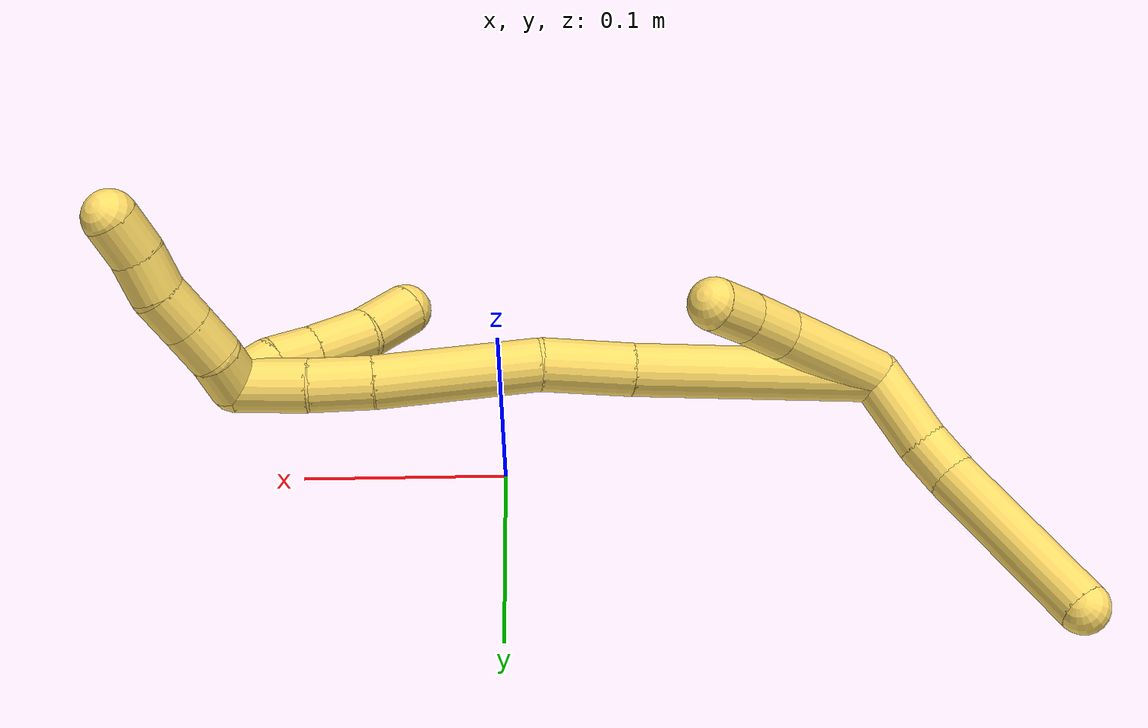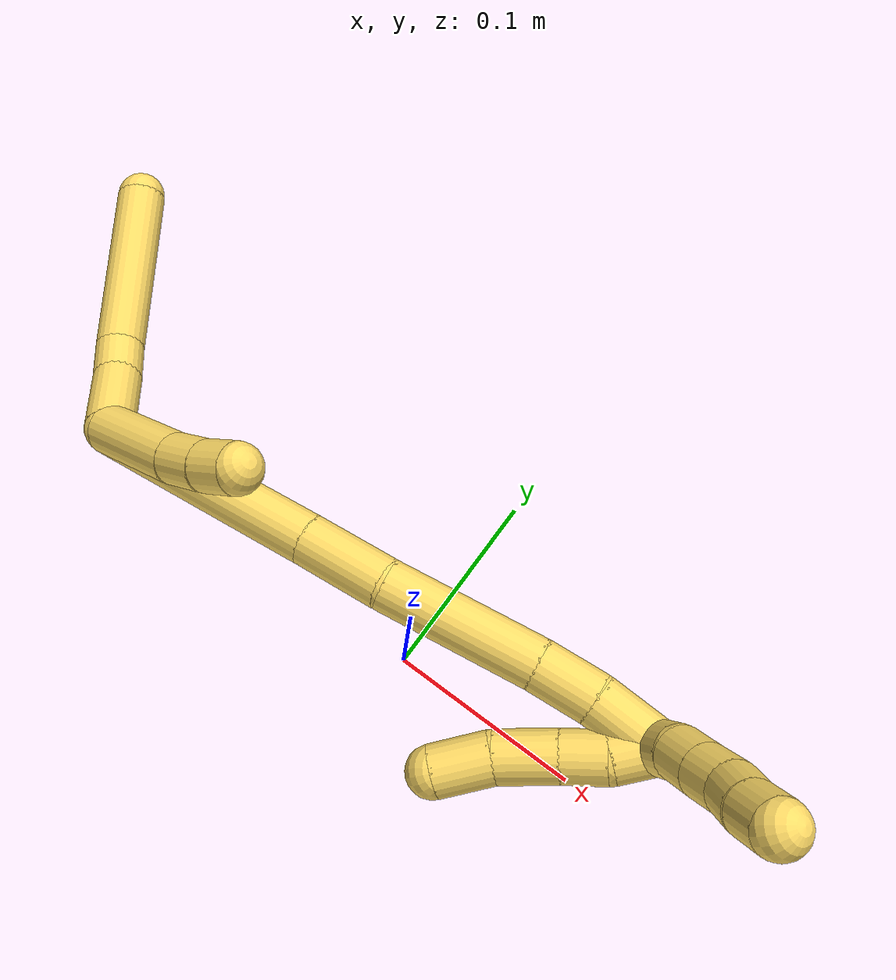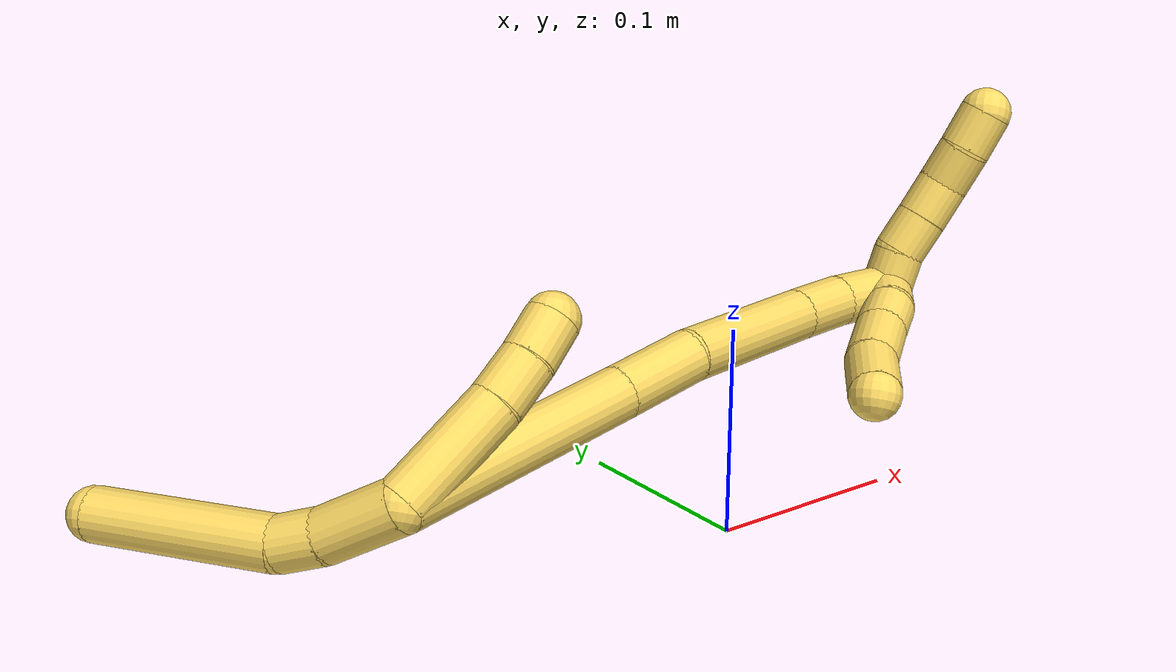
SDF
<sdf version="1.7">
 <world name="default">
  <model name="5">
   <static>0</static>
   <link name="5">
    <collision name="collision-cylinder-e_1_2_8">
     <pose>-0.007187 0.015936 -0.008052 -2.03866 -0.382665 0.610136</pose>
     <geometry><cylinder><radius>0.0125</radius><length>0.038495</length></cylinder></geometry>
     <surface>
      <friction><ode><mu>1.16</mu><mu2>1.16</mu2><slip1>0</slip1><slip2>0</slip2></ode></friction>
      <contact><ode><kp>1e+06</kp><kd>1</kd><max_vel>0</max_vel><min_depth>0.001</min_depth></ode></contact>
     </surface>
    </collision>
    <visual name="visual-cylinder-e_1_2_8">
     <pose>-0.007187 0.015936 -0.008052 -2.03866 -0.382665 0.610136</pose>
     <geometry><cylinder><radius>0.0125</radius><length>0.038495</length></cylinder></geometry>
     <material><ambient>1 0.858824 0.4 1</ambient></material>
    </visual>
    <collision name="collision-cylinder-e_2_8_9">
     <pose>-0.019651 0.040747 -0.019106 -1.89697 -0.51301 0.701006</pose>
     <geometry><cylinder><radius>0.0125</radius><length>0.021504</length></cylinder></geometry>
     <surface>
      <friction><ode><mu>1.16</mu><mu2>1.16</mu2><slip1>0</slip1><slip2>0</slip2></ode></friction>
      <contact><ode><kp>1e+06</kp><kd>1</kd><max_vel>0</max_vel><min_depth>0.001</min_depth></ode></contact>
     </surface>
    </collision>
    <visual name="visual-cylinder-e_2_8_9">
     <pose>-0.019651 0.040747 -0.019106 -1.89697 -0.51301 0.701006</pose>
     <geometry><cylinder><radius>0.0125</radius><length>0.021504</length></cylinder></geometry>
     <material><ambient>1 0.858824 0.4 1</ambient></material>
    </visual>
    <collision name="collision-cylinder-e_3_9_6">
     <pose>-0.050069 0.086937 -0.0214 -1.55183 -0.592793 0.58228</pose>
     <geometry><cylinder><radius>0.0125</radius><length>0.090001</length></cylinder></geometry>
     <surface>
      <friction><ode><mu>1.16</mu><mu2>1.16</mu2><slip1>0</slip1><slip2>0</slip2></ode></friction>
      <contact><ode><kp>1e+06</kp><kd>1</kd><max_vel>0</max_vel><min_depth>0.001</min_depth></ode></contact>
     </surface>
    </collision>
    <visual name="visual-cylinder-e_3_9_6">
     <pose>-0.050069 0.086937 -0.0214 -1.55183 -0.592793 0.58228</pose>
     <geometry><cylinder><radius>0.0125</radius><length>0.090001</length></cylinder></geometry>
     <material><ambient>1 0.858824 0.4 1</ambient></material>
    </visual>
    <collision name="collision-cylinder-e_1_2_10">
     <pose>0.014518 -0.005375 0.023309 0.226638 0.545509 0.063648</pose>
     <geometry><cylinder><radius>0.0125</radius><length>0.055963</length></cylinder></geometry>
     <surface>
      <friction><ode><mu>1.16</mu><mu2>1.16</mu2><slip1>0</slip1><slip2>0</slip2></ode></friction>
      <contact><ode><kp>1e+06</kp><kd>1</kd><max_vel>0</max_vel><min_depth>0.001</min_depth></ode></contact>
     </surface>
    </collision>
    <visual name="visual-cylinder-e_1_2_10">
     <pose>0.014518 -0.005375 0.023309 0.226638 0.545509 0.063648</pose>
     <geometry><cylinder><radius>0.0125</radius><length>0.055963</length></cylinder></geometry>
     <material><ambient>1 0.858824 0.4 1</ambient></material>
    </visual>
    <collision name="collision-cylinder-e_2_10_11">
     <pose>0.034189 -0.012077 0.056873 0.128727 0.462228 0.030331</pose>
     <geometry><cylinder><radius>0.0125</radius><length>0.023107</length></cylinder></geometry>
     <surface>
      <friction><ode><mu>1.16</mu><mu2>1.16</mu2><slip1>0</slip1><slip2>0</slip2></ode></friction>
      <contact><ode><kp>1e+06</kp><kd>1</kd><max_vel>0</max_vel><min_depth>0.001</min_depth></ode></contact>
     </surface>
    </collision>
    <visual name="visual-cylinder-e_2_10_11">
     <pose>0.034189 -0.012077 0.056873 0.128727 0.462228 0.030331</pose>
     <geometry><cylinder><radius>0.0125</radius><length>0.023107</length></cylinder></geometry>
     <material><ambient>1 0.858824 0.4 1</ambient></material>
    </visual>
    <collision name="collision-cylinder-e_3_11_5">
     <pose>0.043534 -0.013745 0.076711 0.035427 0.412263 0.007409</pose>
     <geometry><cylinder><radius>0.0125</radius><length>0.02093</length></cylinder></geometry>
     <surface>
      <friction><ode><mu>1.16</mu><mu2>1.16</mu2><slip1>0</slip1><slip2>0</slip2></ode></friction>
      <contact><ode><kp>1e+06</kp><kd>1</kd><max_vel>0</max_vel><min_depth>0.001</min_depth></ode></contact>
     </surface>
    </collision>
    <visual name="visual-cylinder-e_3_11_5">
     <pose>0.043534 -0.013745 0.076711 0.035427 0.412263 0.007409</pose>
     <geometry><cylinder><radius>0.0125</radius><length>0.02093</length></cylinder></geometry>
     <material><ambient>1 0.858824 0.4 1</ambient></material>
    </visual>
    <collision name="collision-cylinder-e_1_2_12">
     <pose>0.048871 -0.000895 0.033166 0.02699 0.974384 0.014299</pose>
     <geometry><cylinder><radius>0.0125</radius><length>0.118138</length></cylinder></geometry>
     <surface>
      <friction><ode><mu>1.16</mu><mu2>1.16</mu2><slip1>0</slip1><slip2>0</slip2></ode></friction>
      <contact><ode><kp>1e+06</kp><kd>1</kd><max_vel>0</max_vel><min_depth>0.001</min_depth></ode></contact>
     </surface>
    </collision>
    <visual name="visual-cylinder-e_1_2_12">
     <pose>0.048871 -0.000895 0.033166 0.02699 0.974384 0.014299</pose>
     <geometry><cylinder><radius>0.0125</radius><length>0.118138</length></cylinder></geometry>
     <material><ambient>1 0.858824 0.4 1</ambient></material>
    </visual>
    <collision name="collision-cylinder-e_2_12_13">
     <pose>0.115293 -0.002685 0.07872 0.072024 0.954904 0.037275</pose>
     <geometry><cylinder><radius>0.0125</radius><length>0.043004</length></cylinder></geometry>
     <surface>
      <friction><ode><mu>1.16</mu><mu2>1.16</mu2><slip1>0</slip1><slip2>0</slip2></ode></friction>
      <contact><ode><kp>1e+06</kp><kd>1</kd><max_vel>0</max_vel><min_depth>0.001</min_depth></ode></contact>
     </surface>
    </collision>
    <visual name="visual-cylinder-e_2_12_13">
     <pose>0.115293 -0.002685 0.07872 0.072024 0.954904 0.037275</pose>
     <geometry><cylinder><radius>0.0125</radius><length>0.043004</length></cylinder></geometry>
     <material><ambient>1 0.858824 0.4 1</ambient></material>
    </visual>
    <collision name="collision-cylinder-e_3_13_14">
     <pose>0.166666 -0.000517 0.109009 -0.169387 1.07806 -0.101469</pose>
     <geometry><cylinder><radius>0.0125</radius><length>0.076777</length></cylinder></geometry>
     <surface>
      <friction><ode><mu>1.16</mu><mu2>1.16</mu2><slip1>0</slip1><slip2>0</slip2></ode></friction>
      <contact><ode><kp>1e+06</kp><kd>1</kd><max_vel>0</max_vel><min_depth>0.001</min_depth></ode></contact>
     </surface>
    </collision>
    <visual name="visual-cylinder-e_3_13_14">
     <pose>0.166666 -0.000517 0.109009 -0.169387 1.07806 -0.101469</pose>
     <geometry><cylinder><radius>0.0125</radius><length>0.076777</length></cylinder></geometry>
     <material><ambient>1 0.858824 0.4 1</ambient></material>
    </visual>
    <collision name="collision-cylinder-e_4_14_15">
     <pose>0.213343 0.002739 0.133632 -0.028947 1.08871 -0.017524</pose>
     <geometry><cylinder><radius>0.0125</radius><length>0.029018</length></cylinder></geometry>
     <surface>
      <friction><ode><mu>1.16</mu><mu2>1.16</mu2><slip1>0</slip1><slip2>0</slip2></ode></friction>
      <contact><ode><kp>1e+06</kp><kd>1</kd><max_vel>0</max_vel><min_depth>0.001</min_depth></ode></contact>
     </surface>
    </collision>
    <visual name="visual-cylinder-e_4_14_15">
     <pose>0.213343 0.002739 0.133632 -0.028947 1.08871 -0.017524</pose>
     <geometry><cylinder><radius>0.0125</radius><length>0.029018</length></cylinder></geometry>
     <material><ambient>1 0.858824 0.4 1</ambient></material>
    </visual>
    <collision name="collision-cylinder-e_5_15_1">
     <pose>0.241306 0.00167 0.146949 0.189411 1.15263 0.123314</pose>
     <geometry><cylinder><radius>0.0125</radius><length>0.033064</length></cylinder></geometry>
     <surface>
      <friction><ode><mu>1.16</mu><mu2>1.16</mu2><slip1>0</slip1><slip2>0</slip2></ode></friction>
      <contact><ode><kp>1e+06</kp><kd>1</kd><max_vel>0</max_vel><min_depth>0.001</min_depth></ode></contact>
     </surface>
    </collision>
    <visual name="visual-cylinder-e_5_15_1">
     <pose>0.241306 0.00167 0.146949 0.189411 1.15263 0.123314</pose>
     <geometry><cylinder><radius>0.0125</radius><length>0.033064</length></cylinder></geometry>
     <material><ambient>1 0.858824 0.4 1</ambient></material>
    </visual>
    <collision name="collision-cylinder-e_1_1_16">
     <pose>0.251393 -0.006208 0.146932 2.35599 -0.492762 -1.09107</pose>
     <geometry><cylinder><radius>0.0125</radius><length>0.021227</length></cylinder></geometry>
     <surface>
      <friction><ode><mu>1.16</mu><mu2>1.16</mu2><slip1>0</slip1><slip2>0</slip2></ode></friction>
      <contact><ode><kp>1e+06</kp><kd>1</kd><max_vel>0</max_vel><min_depth>0.001</min_depth></ode></contact>
     </surface>
    </collision>
    <visual name="visual-cylinder-e_1_1_16">
     <pose>0.251393 -0.006208 0.146932 2.35599 -0.492762 -1.09107</pose>
     <geometry><cylinder><radius>0.0125</radius><length>0.021227</length></cylinder></geometry>
     <material><ambient>1 0.858824 0.4 1</ambient></material>
    </visual>
    <collision name="collision-cylinder-e_2_16_17">
     <pose>0.239998 -0.017059 0.132888 2.62341 -0.640289 -1.79281</pose>
     <geometry><cylinder><radius>0.0125</radius><length>0.021338</length></cylinder></geometry>
     <surface>
      <friction><ode><mu>1.16</mu><mu2>1.16</mu2><slip1>0</slip1><slip2>0</slip2></ode></friction>
      <contact><ode><kp>1e+06</kp><kd>1</kd><max_vel>0</max_vel><min_depth>0.001</min_depth></ode></contact>
     </surface>
    </collision>
    <visual name="visual-cylinder-e_2_16_17">
     <pose>0.239998 -0.017059 0.132888 2.62341 -0.640289 -1.79281</pose>
     <geometry><cylinder><radius>0.0125</radius><length>0.021338</length></cylinder></geometry>
     <material><ambient>1 0.858824 0.4 1</ambient></material>
    </visual>
    <collision name="collision-cylinder-e_3_17_18">
     <pose>0.224937 -0.027905 0.1156 2.55093 -0.631895 -1.6426</pose>
     <geometry><cylinder><radius>0.0125</radius><length>0.029412</length></cylinder></geometry>
     <surface>
      <friction><ode><mu>1.16</mu><mu2>1.16</mu2><slip1>0</slip1><slip2>0</slip2></ode></friction>
      <contact><ode><kp>1e+06</kp><kd>1</kd><max_vel>0</max_vel><min_depth>0.001</min_depth></ode></contact>
     </surface>
    </collision>
    <visual name="visual-cylinder-e_3_17_18">
     <pose>0.224937 -0.027905 0.1156 2.55093 -0.631895 -1.6426</pose>
     <geometry><cylinder><radius>0.0125</radius><length>0.029412</length></cylinder></geometry>
     <material><ambient>1 0.858824 0.4 1</ambient></material>
    </visual>
    <collision name="collision-cylinder-e_4_18_4">
     <pose>0.210039 -0.043019 0.096502 2.39765 -0.459267 -1.07962</pose>
     <geometry><cylinder><radius>0.0125</radius><length>0.028022</length></cylinder></geometry>
     <surface>
      <friction><ode><mu>1.16</mu><mu2>1.16</mu2><slip1>0</slip1><slip2>0</slip2></ode></friction>
      <contact><ode><kp>1e+06</kp><kd>1</kd><max_vel>0</max_vel><min_depth>0.001</min_depth></ode></contact>
     </surface>
    </collision>
    <visual name="visual-cylinder-e_4_18_4">
     <pose>0.210039 -0.043019 0.096502 2.39765 -0.459267 -1.07962</pose>
     <geometry><cylinder><radius>0.0125</radius><length>0.028022</length></cylinder></geometry>
     <material><ambient>1 0.858824 0.4 1</ambient></material>
    </visual>
    <collision name="collision-cylinder-e_1_1_19">
     <pose>0.255716 -0.003117 0.162875 0.360921 -0.069803 -0.01274</pose>
     <geometry><cylinder><radius>0.0125</radius><length>0.02</length></cylinder></geometry>
     <surface>
      <friction><ode><mu>1.16</mu><mu2>1.16</mu2><slip1>0</slip1><slip2>0</slip2></ode></friction>
      <contact><ode><kp>1e+06</kp><kd>1</kd><max_vel>0</max_vel><min_depth>0.001</min_depth></ode></contact>
     </surface>
    </collision>
    <visual name="visual-cylinder-e_1_1_19">
     <pose>0.255716 -0.003117 0.162875 0.360921 -0.069803 -0.01274</pose>
     <geometry><cylinder><radius>0.0125</radius><length>0.02</length></cylinder></geometry>
     <material><ambient>1 0.858824 0.4 1</ambient></material>
    </visual>
    <collision name="collision-cylinder-e_2_19_20">
     <pose>0.256589 -0.011277 0.180928 0.488767 0.157691 0.0394</pose>
     <geometry><cylinder><radius>0.0125</radius><length>0.02</length></cylinder></geometry>
     <surface>
      <friction><ode><mu>1.16</mu><mu2>1.16</mu2><slip1>0</slip1><slip2>0</slip2></ode></friction>
      <contact><ode><kp>1e+06</kp><kd>1</kd><max_vel>0</max_vel><min_depth>0.001</min_depth></ode></contact>
     </surface>
    </collision>
    <visual name="visual-cylinder-e_2_19_20">
     <pose>0.256589 -0.011277 0.180928 0.488767 0.157691 0.0394</pose>
     <geometry><cylinder><radius>0.0125</radius><length>0.02</length></cylinder></geometry>
     <material><ambient>1 0.858824 0.4 1</ambient></material>
    </visual>
    <collision name="collision-cylinder-e_3_20_21">
     <pose>0.259679 -0.020347 0.198482 0.465023 0.152552 0.03619</pose>
     <geometry><cylinder><radius>0.0125</radius><length>0.02</length></cylinder></geometry>
     <surface>
      <friction><ode><mu>1.16</mu><mu2>1.16</mu2><slip1>0</slip1><slip2>0</slip2></ode></friction>
      <contact><ode><kp>1e+06</kp><kd>1</kd><max_vel>0</max_vel><min_depth>0.001</min_depth></ode></contact>
     </surface>
    </collision>
    <visual name="visual-cylinder-e_3_20_21">
     <pose>0.259679 -0.020347 0.198482 0.465023 0.152552 0.03619</pose>
     <geometry><cylinder><radius>0.0125</radius><length>0.02</length></cylinder></geometry>
     <material><ambient>1 0.858824 0.4 1</ambient></material>
    </visual>
    <collision name="collision-cylinder-e_4_21_22">
     <pose>0.260948 -0.030682 0.215384 0.631704 -0.025072 -0.008194</pose>
     <geometry><cylinder><radius>0.0125</radius><length>0.02</length></cylinder></geometry>
     <surface>
      <friction><ode><mu>1.16</mu><mu2>1.16</mu2><slip1>0</slip1><slip2>0</slip2></ode></friction>
      <contact><ode><kp>1e+06</kp><kd>1</kd><max_vel>0</max_vel><min_depth>0.001</min_depth></ode></contact>
     </surface>
    </collision>
    <visual name="visual-cylinder-e_4_21_22">
     <pose>0.260948 -0.030682 0.215384 0.631704 -0.025072 -0.008194</pose>
     <geometry><cylinder><radius>0.0125</radius><length>0.02</length></cylinder></geometry>
     <material><ambient>1 0.858824 0.4 1</ambient></material>
    </visual>
    <collision name="collision-cylinder-e_5_22_3">
     <pose>0.26121 -0.041427 0.232186 0.506058 0.051292 0.013265</pose>
     <geometry><cylinder><radius>0.0125</radius><length>0.02</length></cylinder></geometry>
     <surface>
      <friction><ode><mu>1.16</mu><mu2>1.16</mu2><slip1>0</slip1><slip2>0</slip2></ode></friction>
      <contact><ode><kp>1e+06</kp><kd>1</kd><max_vel>0</max_vel><min_depth>0.001</min_depth></ode></contact>
     </surface>
    </collision>
    <visual name="visual-cylinder-e_5_22_3">
     <pose>0.26121 -0.041427 0.232186 0.506058 0.051292 0.013265</pose>
     <geometry><cylinder><radius>0.0125</radius><length>0.02</length></cylinder></geometry>
     <material><ambient>1 0.858824 0.4 1</ambient></material>
    </visual>
    <collision name="collision-sphere-3">
     <pose>0.261722 -0.046268 0.240922 0 -0 0</pose>
     <geometry><sphere><radius>0.0125</radius></sphere></geometry>
     <surface>
      <friction><ode><mu>1.16</mu><mu2>1.16</mu2><slip1>0</slip1><slip2>0</slip2></ode></friction>
      <contact><ode><kp>1e+06</kp><kd>1</kd><max_vel>0</max_vel><min_depth>0.001</min_depth></ode></contact>
     </surface>
    </collision>
    <visual name="visual-sphere-3">
     <pose>0.261722 -0.046268 0.240922 0 -0 0</pose>
     <geometry><sphere><radius>0.0125</radius></sphere></geometry>
     <material><ambient>1 0.858824 0.4 1</ambient></material>
    </visual>
    <collision name="collision-sphere-22">
     <pose>0.260697 -0.036586 0.223451 0 -0 0</pose>
     <geometry><sphere><radius>0.0125</radius></sphere></geometry>
     <surface>
      <friction><ode><mu>1.16</mu><mu2>1.16</mu2><slip1>0</slip1><slip2>0</slip2></ode></friction>
      <contact><ode><kp>1e+06</kp><kd>1</kd><max_vel>0</max_vel><min_depth>0.001</min_depth></ode></contact>
     </surface>
    </collision>
    <visual name="visual-sphere-22">
     <pose>0.260697 -0.036586 0.223451 0 -0 0</pose>
     <geometry><sphere><radius>0.0125</radius></sphere></geometry>
     <material><ambient>1 0.858824 0.4 1</ambient></material>
    </visual>
    <collision name="collision-sphere-21">
     <pose>0.261198 -0.024779 0.207316 0 -0 0</pose>
     <geometry><sphere><radius>0.0125</radius></sphere></geometry>
     <surface>
      <friction><ode><mu>1.16</mu><mu2>1.16</mu2><slip1>0</slip1><slip2>0</slip2></ode></friction>
      <contact><ode><kp>1e+06</kp><kd>1</kd><max_vel>0</max_vel><min_depth>0.001</min_depth></ode></contact>
     </surface>
    </collision>
    <visual name="visual-sphere-21">
     <pose>0.261198 -0.024779 0.207316 0 -0 0</pose>
     <geometry><sphere><radius>0.0125</radius></sphere></geometry>
     <material><ambient>1 0.858824 0.4 1</ambient></material>
    </visual>
    <collision name="collision-sphere-20">
     <pose>0.258159 -0.015914 0.189647 0 -0 0</pose>
     <geometry><sphere><radius>0.0125</radius></sphere></geometry>
     <surface>
      <friction><ode><mu>1.16</mu><mu2>1.16</mu2><slip1>0</slip1><slip2>0</slip2></ode></friction>
      <contact><ode><kp>1e+06</kp><kd>1</kd><max_vel>0</max_vel><min_depth>0.001</min_depth></ode></contact>
     </surface>
    </collision>
    <visual name="visual-sphere-20">
     <pose>0.258159 -0.015914 0.189647 0 -0 0</pose>
     <geometry><sphere><radius>0.0125</radius></sphere></geometry>
     <material><ambient>1 0.858824 0.4 1</ambient></material>
    </visual>
    <collision name="collision-sphere-19">
     <pose>0.255018 -0.00664 0.172208 0 -0 0</pose>
     <geometry><sphere><radius>0.0125</radius></sphere></geometry>
     <surface>
      <friction><ode><mu>1.16</mu><mu2>1.16</mu2><slip1>0</slip1><slip2>0</slip2></ode></friction>
      <contact><ode><kp>1e+06</kp><kd>1</kd><max_vel>0</max_vel><min_depth>0.001</min_depth></ode></contact>
     </surface>
    </collision>
    <visual name="visual-sphere-19">
     <pose>0.255018 -0.00664 0.172208 0 -0 0</pose>
     <geometry><sphere><radius>0.0125</radius></sphere></geometry>
     <material><ambient>1 0.858824 0.4 1</ambient></material>
    </visual>
    <collision name="collision-sphere-11">
     <pose>0.039341 -0.013405 0.067128 0 -0 0</pose>
     <geometry><sphere><radius>0.0125</radius></sphere></geometry>
     <surface>
      <friction><ode><mu>1.16</mu><mu2>1.16</mu2><slip1>0</slip1><slip2>0</slip2></ode></friction>
      <contact><ode><kp>1e+06</kp><kd>1</kd><max_vel>0</max_vel><min_depth>0.001</min_depth></ode></contact>
     </surface>
    </collision>
    <visual name="visual-sphere-11">
     <pose>0.039341 -0.013405 0.067128 0 -0 0</pose>
     <geometry><sphere><radius>0.0125</radius></sphere></geometry>
     <material><ambient>1 0.858824 0.4 1</ambient></material>
    </visual>
    <collision name="collision-sphere-10">
     <pose>0.029037 -0.01075 0.046617 0 -0 0</pose>
     <geometry><sphere><radius>0.0125</radius></sphere></geometry>
     <surface>
      <friction><ode><mu>1.16</mu><mu2>1.16</mu2><slip1>0</slip1><slip2>0</slip2></ode></friction>
      <contact><ode><kp>1e+06</kp><kd>1</kd><max_vel>0</max_vel><min_depth>0.001</min_depth></ode></contact>
     </surface>
    </collision>
    <visual name="visual-sphere-10">
     <pose>0.029037 -0.01075 0.046617 0 -0 0</pose>
     <geometry><sphere><radius>0.0125</radius></sphere></geometry>
     <material><ambient>1 0.858824 0.4 1</ambient></material>
    </visual>
    <collision name="collision-sphere-6">
     <pose>-0.07521 0.124253 -0.020692 0 -0 0</pose>
     <geometry><sphere><radius>0.0125</radius></sphere></geometry>
     <surface>
      <friction><ode><mu>1.16</mu><mu2>1.16</mu2><slip1>0</slip1><slip2>0</slip2></ode></friction>
      <contact><ode><kp>1e+06</kp><kd>1</kd><max_vel>0</max_vel><min_depth>0.001</min_depth></ode></contact>
     </surface>
    </collision>
    <visual name="visual-sphere-6">
     <pose>-0.07521 0.124253 -0.020692 0 -0 0</pose>
     <geometry><sphere><radius>0.0125</radius></sphere></geometry>
     <material><ambient>1 0.858824 0.4 1</ambient></material>
    </visual>
    <collision name="collision-sphere-9">
     <pose>-0.024928 0.049621 -0.022108 0 -0 0</pose>
     <geometry><sphere><radius>0.0125</radius></sphere></geometry>
     <surface>
      <friction><ode><mu>1.16</mu><mu2>1.16</mu2><slip1>0</slip1><slip2>0</slip2></ode></friction>
      <contact><ode><kp>1e+06</kp><kd>1</kd><max_vel>0</max_vel><min_depth>0.001</min_depth></ode></contact>
     </surface>
    </collision>
    <visual name="visual-sphere-9">
     <pose>-0.024928 0.049621 -0.022108 0 -0 0</pose>
     <geometry><sphere><radius>0.0125</radius></sphere></geometry>
     <material><ambient>1 0.858824 0.4 1</ambient></material>
    </visual>
    <collision name="collision-sphere-2">
     <geometry><sphere><radius>0.0125</radius></sphere></geometry>
     <surface>
      <friction><ode><mu>1.16</mu><mu2>1.16</mu2><slip1>0</slip1><slip2>0</slip2></ode></friction>
      <contact><ode><kp>1e+06</kp><kd>1</kd><max_vel>0</max_vel><min_depth>0.001</min_depth></ode></contact>
     </surface>
    </collision>
    <visual name="visual-sphere-2">
     <geometry><sphere><radius>0.0125</radius></sphere></geometry>
     <material><ambient>1 0.858824 0.4 1</ambient></material>
    </visual>
    <collision name="collision-sphere-8">
     <pose>-0.014374 0.031873 -0.016105 0 -0 0</pose>
     <geometry><sphere><radius>0.0125</radius></sphere></geometry>
     <surface>
      <friction><ode><mu>1.16</mu><mu2>1.16</mu2><slip1>0</slip1><slip2>0</slip2></ode></friction>
      <contact><ode><kp>1e+06</kp><kd>1</kd><max_vel>0</max_vel><min_depth>0.001</min_depth></ode></contact>
     </surface>
    </collision>
    <visual name="visual-sphere-8">
     <pose>-0.014374 0.031873 -0.016105 0 -0 0</pose>
     <geometry><sphere><radius>0.0125</radius></sphere></geometry>
     <material><ambient>1 0.858824 0.4 1</ambient></material>
    </visual>
    <collision name="collision-sphere-5">
     <pose>0.047727 -0.014084 0.086293 0 -0 0</pose>
     <geometry><sphere><radius>0.0125</radius></sphere></geometry>
     <surface>
      <friction><ode><mu>1.16</mu><mu2>1.16</mu2><slip1>0</slip1><slip2>0</slip2></ode></friction>
      <contact><ode><kp>1e+06</kp><kd>1</kd><max_vel>0</max_vel><min_depth>0.001</min_depth></ode></contact>
     </surface>
    </collision>
    <visual name="visual-sphere-5">
     <pose>0.047727 -0.014084 0.086293 0 -0 0</pose>
     <geometry><sphere><radius>0.0125</radius></sphere></geometry>
     <material><ambient>1 0.858824 0.4 1</ambient></material>
    </visual>
    <collision name="collision-sphere-12">
     <pose>0.097742 -0.001791 0.066331 0 -0 0</pose>
     <geometry><sphere><radius>0.0125</radius></sphere></geometry>
     <surface>
      <friction><ode><mu>1.16</mu><mu2>1.16</mu2><slip1>0</slip1><slip2>0</slip2></ode></friction>
      <contact><ode><kp>1e+06</kp><kd>1</kd><max_vel>0</max_vel><min_depth>0.001</min_depth></ode></contact>
     </surface>
    </collision>
    <visual name="visual-sphere-12">
     <pose>0.097742 -0.001791 0.066331 0 -0 0</pose>
     <geometry><sphere><radius>0.0125</radius></sphere></geometry>
     <material><ambient>1 0.858824 0.4 1</ambient></material>
    </visual>
    <collision name="collision-sphere-13">
     <pose>0.132844 -0.003578 0.091109 0 -0 0</pose>
     <geometry><sphere><radius>0.0125</radius></sphere></geometry>
     <surface>
      <friction><ode><mu>1.16</mu><mu2>1.16</mu2><slip1>0</slip1><slip2>0</slip2></ode></friction>
      <contact><ode><kp>1e+06</kp><kd>1</kd><max_vel>0</max_vel><min_depth>0.001</min_depth></ode></contact>
     </surface>
    </collision>
    <visual name="visual-sphere-13">
     <pose>0.132844 -0.003578 0.091109 0 -0 0</pose>
     <geometry><sphere><radius>0.0125</radius></sphere></geometry>
     <material><ambient>1 0.858824 0.4 1</ambient></material>
    </visual>
    <collision name="collision-sphere-14">
     <pose>0.200488 0.002544 0.126908 0 -0 0</pose>
     <geometry><sphere><radius>0.0125</radius></sphere></geometry>
     <surface>
      <friction><ode><mu>1.16</mu><mu2>1.16</mu2><slip1>0</slip1><slip2>0</slip2></ode></friction>
      <contact><ode><kp>1e+06</kp><kd>1</kd><max_vel>0</max_vel><min_depth>0.001</min_depth></ode></contact>
     </surface>
    </collision>
    <visual name="visual-sphere-14">
     <pose>0.200488 0.002544 0.126908 0 -0 0</pose>
     <geometry><sphere><radius>0.0125</radius></sphere></geometry>
     <material><ambient>1 0.858824 0.4 1</ambient></material>
    </visual>
    <collision name="collision-sphere-15">
     <pose>0.226199 0.002933 0.140356 0 -0 0</pose>
     <geometry><sphere><radius>0.0125</radius></sphere></geometry>
     <surface>
      <friction><ode><mu>1.16</mu><mu2>1.16</mu2><slip1>0</slip1><slip2>0</slip2></ode></friction>
      <contact><ode><kp>1e+06</kp><kd>1</kd><max_vel>0</max_vel><min_depth>0.001</min_depth></ode></contact>
     </surface>
    </collision>
    <visual name="visual-sphere-15">
     <pose>0.226199 0.002933 0.140356 0 -0 0</pose>
     <geometry><sphere><radius>0.0125</radius></sphere></geometry>
     <material><ambient>1 0.858824 0.4 1</ambient></material>
    </visual>
    <collision name="collision-sphere-1">
     <pose>0.256413 0.000406 0.153542 0 -0 0</pose>
     <geometry><sphere><radius>0.0125</radius></sphere></geometry>
     <surface>
      <friction><ode><mu>1.16</mu><mu2>1.16</mu2><slip1>0</slip1><slip2>0</slip2></ode></friction>
      <contact><ode><kp>1e+06</kp><kd>1</kd><max_vel>0</max_vel><min_depth>0.001</min_depth></ode></contact>
     </surface>
    </collision>
    <visual name="visual-sphere-1">
     <pose>0.256413 0.000406 0.153542 0 -0 0</pose>
     <geometry><sphere><radius>0.0125</radius></sphere></geometry>
     <material><ambient>1 0.858824 0.4 1</ambient></material>
    </visual>
    <collision name="collision-sphere-18">
     <pose>0.21625 -0.034514 0.105744 0 -0 0</pose>
     <geometry><sphere><radius>0.0125</radius></sphere></geometry>
     <surface>
      <friction><ode><mu>1.16</mu><mu2>1.16</mu2><slip1>0</slip1><slip2>0</slip2></ode></friction>
      <contact><ode><kp>1e+06</kp><kd>1</kd><max_vel>0</max_vel><min_depth>0.001</min_depth></ode></contact>
     </surface>
    </collision>
    <visual name="visual-sphere-18">
     <pose>0.21625 -0.034514 0.105744 0 -0 0</pose>
     <geometry><sphere><radius>0.0125</radius></sphere></geometry>
     <material><ambient>1 0.858824 0.4 1</ambient></material>
    </visual>
    <collision name="collision-sphere-16">
     <pose>0.246372 -0.012821 0.140321 0 -0 0</pose>
     <geometry><sphere><radius>0.0125</radius></sphere></geometry>
     <surface>
      <friction><ode><mu>1.16</mu><mu2>1.16</mu2><slip1>0</slip1><slip2>0</slip2></ode></friction>
      <contact><ode><kp>1e+06</kp><kd>1</kd><max_vel>0</max_vel><min_depth>0.001</min_depth></ode></contact>
     </surface>
    </collision>
    <visual name="visual-sphere-16">
     <pose>0.246372 -0.012821 0.140321 0 -0 0</pose>
     <geometry><sphere><radius>0.0125</radius></sphere></geometry>
     <material><ambient>1 0.858824 0.4 1</ambient></material>
    </visual>
    <collision name="collision-sphere-17">
     <pose>0.233623 -0.021297 0.125455 0 -0 0</pose>
     <geometry><sphere><radius>0.0125</radius></sphere></geometry>
     <surface>
      <friction><ode><mu>1.16</mu><mu2>1.16</mu2><slip1>0</slip1><slip2>0</slip2></ode></friction>
      <contact><ode><kp>1e+06</kp><kd>1</kd><max_vel>0</max_vel><min_depth>0.001</min_depth></ode></contact>
     </surface>
    </collision>
    <visual name="visual-sphere-17">
     <pose>0.233623 -0.021297 0.125455 0 -0 0</pose>
     <geometry><sphere><radius>0.0125</radius></sphere></geometry>
     <material><ambient>1 0.858824 0.4 1</ambient></material>
    </visual>
    <collision name="collision-sphere-4">
     <pose>0.203828 -0.051524 0.087261 0 -0 0</pose>
     <geometry><sphere><radius>0.0125</radius></sphere></geometry>
     <surface>
      <friction><ode><mu>1.16</mu><mu2>1.16</mu2><slip1>0</slip1><slip2>0</slip2></ode></friction>
      <contact><ode><kp>1e+06</kp><kd>1</kd><max_vel>0</max_vel><min_depth>0.001</min_depth></ode></contact>
     </surface>
    </collision>
    <visual name="visual-sphere-4">
     <pose>0.203828 -0.051524 0.087261 0 -0 0</pose>
     <geometry><sphere><radius>0.0125</radius></sphere></geometry>
     <material><ambient>1 0.858824 0.4 1</ambient></material>
    </visual>
    <inertial>
     <pose>0.111796 0.004882 0.077123 0 -0 0</pose>
     <mass>0.75</mass>
     <inertia>
      <ixx>0.000224</ixx>
      <ixy>0</ixy>
      <ixz>0</ixz>
      <iyy>0.000274</iyy>
      <iyz>0</iyz>
      <izz>-0.000163</izz>
     </inertia>
    </inertial>
   </link>
   <pose>-0.177718 -0.005297 0.063567 -0.343603 0.414678 -0.092549</pose>
  </model>
 </world>
</sdf>
